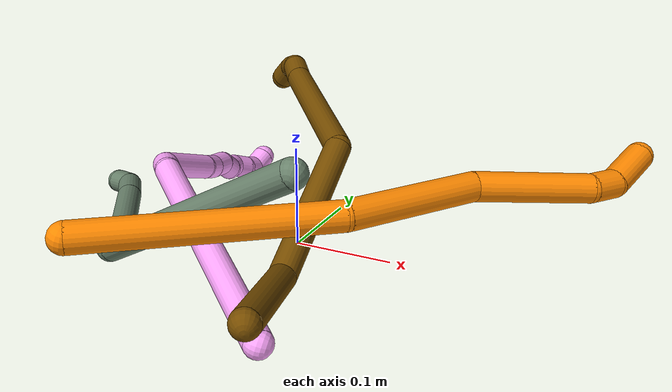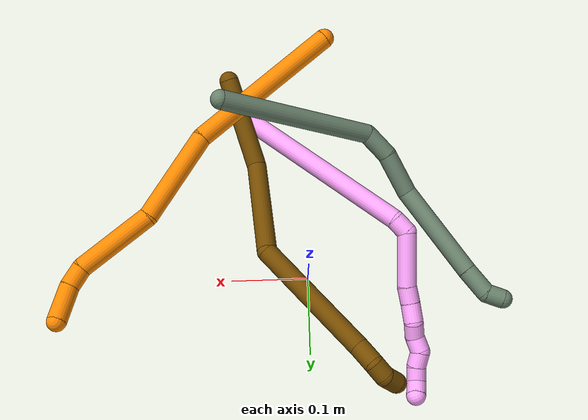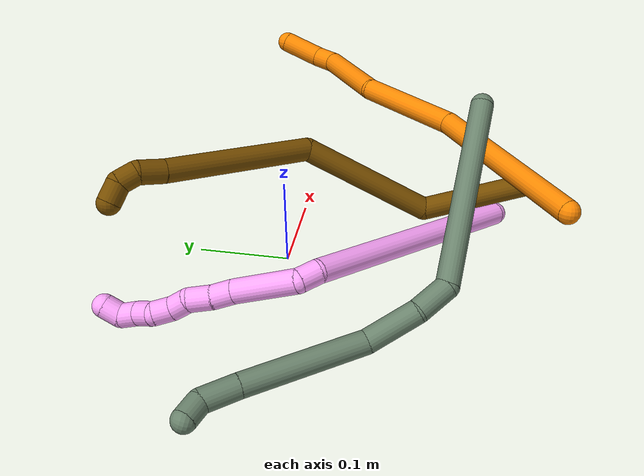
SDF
<sdf version="1.7">
 <world name="default">
  <model name="4">
   <static>0</static>
   <link name="4">
    <collision name="collision-cylinder-e_1_1_4">
     <pose>-0.07148 0.080844 -0.073861 -2.31109 -0.578316 1.18717</pose>
     <geometry><cylinder><radius>0.0125</radius><length>0.261539</length></cylinder></geometry>
     <surface>
      <friction><ode><mu>1.16</mu><mu2>1.16</mu2><slip1>0</slip1><slip2>0</slip2></ode></friction>
      <contact><ode><kp>1e+06</kp><kd>1</kd><max_vel>0</max_vel><min_depth>0.001</min_depth></ode></contact>
     </surface>
    </collision>
    <visual name="visual-cylinder-e_1_1_4">
     <pose>-0.07148 0.080844 -0.073861 -2.31109 -0.578316 1.18717</pose>
     <geometry><cylinder><radius>0.0125</radius><length>0.261539</length></cylinder></geometry>
     <material><ambient>1 0.65098 0.996078 1</ambient></material>
    </visual>
    <collision name="collision-cylinder-e_2_4_5">
     <pose>-0.147331 0.170867 -0.151646 -1.97482 -0.412609 0.614114</pose>
     <geometry><cylinder><radius>0.0125</radius><length>0.021795</length></cylinder></geometry>
     <surface>
      <friction><ode><mu>1.16</mu><mu2>1.16</mu2><slip1>0</slip1><slip2>0</slip2></ode></friction>
      <contact><ode><kp>1e+06</kp><kd>1</kd><max_vel>0</max_vel><min_depth>0.001</min_depth></ode></contact>
     </surface>
    </collision>
    <visual name="visual-cylinder-e_2_4_5">
     <pose>-0.147331 0.170867 -0.151646 -1.97482 -0.412609 0.614114</pose>
     <geometry><cylinder><radius>0.0125</radius><length>0.021795</length></cylinder></geometry>
     <material><ambient>1 0.65098 0.996078 1</ambient></material>
    </visual>
    <collision name="collision-cylinder-e_3_5_6">
     <pose>-0.164438 0.209312 -0.142455 -1.14946 -0.378057 0.246555</pose>
     <geometry><cylinder><radius>0.0125</radius><length>0.069014</length></cylinder></geometry>
     <surface>
      <friction><ode><mu>1.16</mu><mu2>1.16</mu2><slip1>0</slip1><slip2>0</slip2></ode></friction>
      <contact><ode><kp>1e+06</kp><kd>1</kd><max_vel>0</max_vel><min_depth>0.001</min_depth></ode></contact>
     </surface>
    </collision>
    <visual name="visual-cylinder-e_3_5_6">
     <pose>-0.164438 0.209312 -0.142455 -1.14946 -0.378057 0.246555</pose>
     <geometry><cylinder><radius>0.0125</radius><length>0.069014</length></cylinder></geometry>
     <material><ambient>1 0.65098 0.996078 1</ambient></material>
    </visual>
    <collision name="collision-cylinder-e_4_6_7">
     <pose>-0.181338 0.248634 -0.127248 -1.36584 -0.385111 0.314597</pose>
     <geometry><cylinder><radius>0.0125</radius><length>0.022166</length></cylinder></geometry>
     <surface>
      <friction><ode><mu>1.16</mu><mu2>1.16</mu2><slip1>0</slip1><slip2>0</slip2></ode></friction>
      <contact><ode><kp>1e+06</kp><kd>1</kd><max_vel>0</max_vel><min_depth>0.001</min_depth></ode></contact>
     </surface>
    </collision>
    <visual name="visual-cylinder-e_4_6_7">
     <pose>-0.181338 0.248634 -0.127248 -1.36584 -0.385111 0.314597</pose>
     <geometry><cylinder><radius>0.0125</radius><length>0.022166</length></cylinder></geometry>
     <material><ambient>1 0.65098 0.996078 1</ambient></material>
    </visual>
    <collision name="collision-cylinder-e_5_7_8">
     <pose>-0.191837 0.269118 -0.122583 -1.32866 -0.532884 0.421113</pose>
     <geometry><cylinder><radius>0.0125</radius><length>0.02494</length></cylinder></geometry>
     <surface>
      <friction><ode><mu>1.16</mu><mu2>1.16</mu2><slip1>0</slip1><slip2>0</slip2></ode></friction>
      <contact><ode><kp>1e+06</kp><kd>1</kd><max_vel>0</max_vel><min_depth>0.001</min_depth></ode></contact>
     </surface>
    </collision>
    <visual name="visual-cylinder-e_5_7_8">
     <pose>-0.191837 0.269118 -0.122583 -1.32866 -0.532884 0.421113</pose>
     <geometry><cylinder><radius>0.0125</radius><length>0.02494</length></cylinder></geometry>
     <material><ambient>1 0.65098 0.996078 1</ambient></material>
    </visual>
    <collision name="collision-cylinder-e_6_8_9">
     <pose>-0.199217 0.289155 -0.116763 -1.24525 -0.102655 0.073725</pose>
     <geometry><cylinder><radius>0.0125</radius><length>0.020393</length></cylinder></geometry>
     <surface>
      <friction><ode><mu>1.16</mu><mu2>1.16</mu2><slip1>0</slip1><slip2>0</slip2></ode></friction>
      <contact><ode><kp>1e+06</kp><kd>1</kd><max_vel>0</max_vel><min_depth>0.001</min_depth></ode></contact>
     </surface>
    </collision>
    <visual name="visual-cylinder-e_6_8_9">
     <pose>-0.199217 0.289155 -0.116763 -1.24525 -0.102655 0.073725</pose>
     <geometry><cylinder><radius>0.0125</radius><length>0.020393</length></cylinder></geometry>
     <material><ambient>1 0.65098 0.996078 1</ambient></material>
    </visual>
    <collision name="collision-cylinder-e_7_9_10">
     <pose>-0.204852 0.307702 -0.113374 -1.55448 -0.474492 0.467093</pose>
     <geometry><cylinder><radius>0.0125</radius><length>0.020095</length></cylinder></geometry>
     <surface>
      <friction><ode><mu>1.16</mu><mu2>1.16</mu2><slip1>0</slip1><slip2>0</slip2></ode></friction>
      <contact><ode><kp>1e+06</kp><kd>1</kd><max_vel>0</max_vel><min_depth>0.001</min_depth></ode></contact>
     </surface>
    </collision>
    <visual name="visual-cylinder-e_7_9_10">
     <pose>-0.204852 0.307702 -0.113374 -1.55448 -0.474492 0.467093</pose>
     <geometry><cylinder><radius>0.0125</radius><length>0.020095</length></cylinder></geometry>
     <material><ambient>1 0.65098 0.996078 1</ambient></material>
    </visual>
    <collision name="collision-cylinder-e_8_10_11">
     <pose>-0.212766 0.323891 -0.107166 -0.874654 -0.338118 0.159263</pose>
     <geometry><cylinder><radius>0.0125</radius><length>0.020041</length></cylinder></geometry>
     <surface>
      <friction><ode><mu>1.16</mu><mu2>1.16</mu2><slip1>0</slip1><slip2>0</slip2></ode></friction>
      <contact><ode><kp>1e+06</kp><kd>1</kd><max_vel>0</max_vel><min_depth>0.001</min_depth></ode></contact>
     </surface>
    </collision>
    <visual name="visual-cylinder-e_8_10_11">
     <pose>-0.212766 0.323891 -0.107166 -0.874654 -0.338118 0.159263</pose>
     <geometry><cylinder><radius>0.0125</radius><length>0.020041</length></cylinder></geometry>
     <material><ambient>1 0.65098 0.996078 1</ambient></material>
    </visual>
    <collision name="collision-cylinder-e_9_11_12">
     <pose>-0.220162 0.339548 -0.097509 -1.16657 -0.419133 0.278874</pose>
     <geometry><cylinder><radius>0.0125</radius><length>0.020011</length></cylinder></geometry>
     <surface>
      <friction><ode><mu>1.16</mu><mu2>1.16</mu2><slip1>0</slip1><slip2>0</slip2></ode></friction>
      <contact><ode><kp>1e+06</kp><kd>1</kd><max_vel>0</max_vel><min_depth>0.001</min_depth></ode></contact>
     </surface>
    </collision>
    <visual name="visual-cylinder-e_9_11_12">
     <pose>-0.220162 0.339548 -0.097509 -1.16657 -0.419133 0.278874</pose>
     <geometry><cylinder><radius>0.0125</radius><length>0.020011</length></cylinder></geometry>
     <material><ambient>1 0.65098 0.996078 1</ambient></material>
    </visual>
    <collision name="collision-cylinder-e_10_12_2">
     <pose>-0.233346 0.351233 -0.091413 -0.919533 -1.14552 0.618161</pose>
     <geometry><cylinder><radius>0.0125</radius><length>0.020007</length></cylinder></geometry>
     <surface>
      <friction><ode><mu>1.16</mu><mu2>1.16</mu2><slip1>0</slip1><slip2>0</slip2></ode></friction>
      <contact><ode><kp>1e+06</kp><kd>1</kd><max_vel>0</max_vel><min_depth>0.001</min_depth></ode></contact>
     </surface>
    </collision>
    <visual name="visual-cylinder-e_10_12_2">
     <pose>-0.233346 0.351233 -0.091413 -0.919533 -1.14552 0.618161</pose>
     <geometry><cylinder><radius>0.0125</radius><length>0.020007</length></cylinder></geometry>
     <material><ambient>1 0.65098 0.996078 1</ambient></material>
    </visual>
    <collision name="collision-sphere-2">
     <pose>-0.242459 0.354515 -0.088911 0 -0 0</pose>
     <geometry><sphere><radius>0.0125</radius></sphere></geometry>
     <surface>
      <friction><ode><mu>1.16</mu><mu2>1.16</mu2><slip1>0</slip1><slip2>0</slip2></ode></friction>
      <contact><ode><kp>1e+06</kp><kd>1</kd><max_vel>0</max_vel><min_depth>0.001</min_depth></ode></contact>
     </surface>
    </collision>
    <visual name="visual-sphere-2">
     <pose>-0.242459 0.354515 -0.088911 0 -0 0</pose>
     <geometry><sphere><radius>0.0125</radius></sphere></geometry>
     <material><ambient>1 0.65098 0.996078 1</ambient></material>
    </visual>
    <collision name="collision-sphere-12">
     <pose>-0.224234 0.347951 -0.093915 0 -0 0</pose>
     <geometry><sphere><radius>0.0125</radius></sphere></geometry>
     <surface>
      <friction><ode><mu>1.16</mu><mu2>1.16</mu2><slip1>0</slip1><slip2>0</slip2></ode></friction>
      <contact><ode><kp>1e+06</kp><kd>1</kd><max_vel>0</max_vel><min_depth>0.001</min_depth></ode></contact>
     </surface>
    </collision>
    <visual name="visual-sphere-12">
     <pose>-0.224234 0.347951 -0.093915 0 -0 0</pose>
     <geometry><sphere><radius>0.0125</radius></sphere></geometry>
     <material><ambient>1 0.65098 0.996078 1</ambient></material>
    </visual>
    <collision name="collision-sphere-11">
     <pose>-0.21609 0.331145 -0.101104 0 -0 0</pose>
     <geometry><sphere><radius>0.0125</radius></sphere></geometry>
     <surface>
      <friction><ode><mu>1.16</mu><mu2>1.16</mu2><slip1>0</slip1><slip2>0</slip2></ode></friction>
      <contact><ode><kp>1e+06</kp><kd>1</kd><max_vel>0</max_vel><min_depth>0.001</min_depth></ode></contact>
     </surface>
    </collision>
    <visual name="visual-sphere-11">
     <pose>-0.21609 0.331145 -0.101104 0 -0 0</pose>
     <geometry><sphere><radius>0.0125</radius></sphere></geometry>
     <material><ambient>1 0.65098 0.996078 1</ambient></material>
    </visual>
    <collision name="collision-sphere-10">
     <pose>-0.209442 0.316638 -0.113228 0 -0 0</pose>
     <geometry><sphere><radius>0.0125</radius></sphere></geometry>
     <surface>
      <friction><ode><mu>1.16</mu><mu2>1.16</mu2><slip1>0</slip1><slip2>0</slip2></ode></friction>
      <contact><ode><kp>1e+06</kp><kd>1</kd><max_vel>0</max_vel><min_depth>0.001</min_depth></ode></contact>
     </surface>
    </collision>
    <visual name="visual-sphere-10">
     <pose>-0.209442 0.316638 -0.113228 0 -0 0</pose>
     <geometry><sphere><radius>0.0125</radius></sphere></geometry>
     <material><ambient>1 0.65098 0.996078 1</ambient></material>
    </visual>
    <collision name="collision-sphere-9">
     <pose>-0.200261 0.298765 -0.113519 0 -0 0</pose>
     <geometry><sphere><radius>0.0125</radius></sphere></geometry>
     <surface>
      <friction><ode><mu>1.16</mu><mu2>1.16</mu2><slip1>0</slip1><slip2>0</slip2></ode></friction>
      <contact><ode><kp>1e+06</kp><kd>1</kd><max_vel>0</max_vel><min_depth>0.001</min_depth></ode></contact>
     </surface>
    </collision>
    <visual name="visual-sphere-9">
     <pose>-0.200261 0.298765 -0.113519 0 -0 0</pose>
     <geometry><sphere><radius>0.0125</radius></sphere></geometry>
     <material><ambient>1 0.65098 0.996078 1</ambient></material>
    </visual>
    <collision name="collision-sphere-4">
     <pose>-0.142961 0.161688 -0.147722 0 -0 0</pose>
     <geometry><sphere><radius>0.0125</radius></sphere></geometry>
     <surface>
      <friction><ode><mu>1.16</mu><mu2>1.16</mu2><slip1>0</slip1><slip2>0</slip2></ode></friction>
      <contact><ode><kp>1e+06</kp><kd>1</kd><max_vel>0</max_vel><min_depth>0.001</min_depth></ode></contact>
     </surface>
    </collision>
    <visual name="visual-sphere-4">
     <pose>-0.142961 0.161688 -0.147722 0 -0 0</pose>
     <geometry><sphere><radius>0.0125</radius></sphere></geometry>
     <material><ambient>1 0.65098 0.996078 1</ambient></material>
    </visual>
    <collision name="collision-sphere-1">
     <geometry><sphere><radius>0.0125</radius></sphere></geometry>
     <surface>
      <friction><ode><mu>1.16</mu><mu2>1.16</mu2><slip1>0</slip1><slip2>0</slip2></ode></friction>
      <contact><ode><kp>1e+06</kp><kd>1</kd><max_vel>0</max_vel><min_depth>0.001</min_depth></ode></contact>
     </surface>
    </collision>
    <visual name="visual-sphere-1">
     <geometry><sphere><radius>0.0125</radius></sphere></geometry>
     <material><ambient>1 0.65098 0.996078 1</ambient></material>
    </visual>
    <collision name="collision-sphere-8">
     <pose>-0.198172 0.279545 -0.120007 0 -0 0</pose>
     <geometry><sphere><radius>0.0125</radius></sphere></geometry>
     <surface>
      <friction><ode><mu>1.16</mu><mu2>1.16</mu2><slip1>0</slip1><slip2>0</slip2></ode></friction>
      <contact><ode><kp>1e+06</kp><kd>1</kd><max_vel>0</max_vel><min_depth>0.001</min_depth></ode></contact>
     </surface>
    </collision>
    <visual name="visual-sphere-8">
     <pose>-0.198172 0.279545 -0.120007 0 -0 0</pose>
     <geometry><sphere><radius>0.0125</radius></sphere></geometry>
     <material><ambient>1 0.65098 0.996078 1</ambient></material>
    </visual>
    <collision name="collision-sphere-5">
     <pose>-0.151701 0.180047 -0.155571 0 -0 0</pose>
     <geometry><sphere><radius>0.0125</radius></sphere></geometry>
     <surface>
      <friction><ode><mu>1.16</mu><mu2>1.16</mu2><slip1>0</slip1><slip2>0</slip2></ode></friction>
      <contact><ode><kp>1e+06</kp><kd>1</kd><max_vel>0</max_vel><min_depth>0.001</min_depth></ode></contact>
     </surface>
    </collision>
    <visual name="visual-sphere-5">
     <pose>-0.151701 0.180047 -0.155571 0 -0 0</pose>
     <geometry><sphere><radius>0.0125</radius></sphere></geometry>
     <material><ambient>1 0.65098 0.996078 1</ambient></material>
    </visual>
    <collision name="collision-sphere-6">
     <pose>-0.177175 0.238578 -0.129339 0 -0 0</pose>
     <geometry><sphere><radius>0.0125</radius></sphere></geometry>
     <surface>
      <friction><ode><mu>1.16</mu><mu2>1.16</mu2><slip1>0</slip1><slip2>0</slip2></ode></friction>
      <contact><ode><kp>1e+06</kp><kd>1</kd><max_vel>0</max_vel><min_depth>0.001</min_depth></ode></contact>
     </surface>
    </collision>
    <visual name="visual-sphere-6">
     <pose>-0.177175 0.238578 -0.129339 0 -0 0</pose>
     <geometry><sphere><radius>0.0125</radius></sphere></geometry>
     <material><ambient>1 0.65098 0.996078 1</ambient></material>
    </visual>
    <collision name="collision-sphere-7">
     <pose>-0.185502 0.25869 -0.125158 0 -0 0</pose>
     <geometry><sphere><radius>0.0125</radius></sphere></geometry>
     <surface>
      <friction><ode><mu>1.16</mu><mu2>1.16</mu2><slip1>0</slip1><slip2>0</slip2></ode></friction>
      <contact><ode><kp>1e+06</kp><kd>1</kd><max_vel>0</max_vel><min_depth>0.001</min_depth></ode></contact>
     </surface>
    </collision>
    <visual name="visual-sphere-7">
     <pose>-0.185502 0.25869 -0.125158 0 -0 0</pose>
     <geometry><sphere><radius>0.0125</radius></sphere></geometry>
     <material><ambient>1 0.65098 0.996078 1</ambient></material>
    </visual>
    <inertial>
     <pose>-0.127151 0.167858 -0.097838 0 -0 0</pose>
     <mass>0.5</mass>
     <inertia>
      <ixx>0.001665</ixx>
      <ixy>0</ixy>
      <ixz>0</ixz>
      <iyy>0.001406</iyy>
      <iyz>0</iyz>
      <izz>-0.000134</izz>
     </inertia>
    </inertial>
   </link>
   <pose>0.085295 -0.22274 0.02933 -2.00453 0.844785 -1.60511</pose>
  </model>
  <model name="12">
   <static>0</static>
   <link name="12">
    <collision name="collision-cylinder-e_1_1_4">
     <pose>-0.022585 0.005407 0.054533 -0.098825 -0.390919 0.019581</pose>
     <geometry><cylinder><radius>0.0125</radius><length>0.118544</length></cylinder></geometry>
     <surface>
      <friction><ode><mu>1.16</mu><mu2>1.16</mu2><slip1>0</slip1><slip2>0</slip2></ode></friction>
      <contact><ode><kp>1e+06</kp><kd>1</kd><max_vel>0</max_vel><min_depth>0.001</min_depth></ode></contact>
     </surface>
    </collision>
    <visual name="visual-cylinder-e_1_1_4">
     <pose>-0.022585 0.005407 0.054533 -0.098825 -0.390919 0.019581</pose>
     <geometry><cylinder><radius>0.0125</radius><length>0.118544</length></cylinder></geometry>
     <material><ambient>0.466667 0.301961 0 1</ambient></material>
    </visual>
    <collision name="collision-cylinder-e_2_4_5">
     <pose>-0.026443 0.041157 0.174112 -0.436481 0.25521 -0.056893</pose>
     <geometry><cylinder><radius>0.0125</radius><length>0.148356</length></cylinder></geometry>
     <surface>
      <friction><ode><mu>1.16</mu><mu2>1.16</mu2><slip1>0</slip1><slip2>0</slip2></ode></friction>
      <contact><ode><kp>1e+06</kp><kd>1</kd><max_vel>0</max_vel><min_depth>0.001</min_depth></ode></contact>
     </surface>
    </collision>
    <visual name="visual-cylinder-e_2_4_5">
     <pose>-0.026443 0.041157 0.174112 -0.436481 0.25521 -0.056893</pose>
     <geometry><cylinder><radius>0.0125</radius><length>0.148356</length></cylinder></geometry>
     <material><ambient>0.466667 0.301961 0 1</ambient></material>
    </visual>
    <collision name="collision-cylinder-e_3_5_6">
     <pose>-0.003389 0.053467 0.318827 0.2226 0.052937 0.005918</pose>
     <geometry><cylinder><radius>0.0125</radius><length>0.163599</length></cylinder></geometry>
     <surface>
      <friction><ode><mu>1.16</mu><mu2>1.16</mu2><slip1>0</slip1><slip2>0</slip2></ode></friction>
      <contact><ode><kp>1e+06</kp><kd>1</kd><max_vel>0</max_vel><min_depth>0.001</min_depth></ode></contact>
     </surface>
    </collision>
    <visual name="visual-cylinder-e_3_5_6">
     <pose>-0.003389 0.053467 0.318827 0.2226 0.052937 0.005918</pose>
     <geometry><cylinder><radius>0.0125</radius><length>0.163599</length></cylinder></geometry>
     <material><ambient>0.466667 0.301961 0 1</ambient></material>
    </visual>
    <collision name="collision-cylinder-e_4_6_7">
     <pose>0.002601 0.03342 0.412101 0.146921 0.120279 0.008862</pose>
     <geometry><cylinder><radius>0.0125</radius><length>0.027704</length></cylinder></geometry>
     <surface>
      <friction><ode><mu>1.16</mu><mu2>1.16</mu2><slip1>0</slip1><slip2>0</slip2></ode></friction>
      <contact><ode><kp>1e+06</kp><kd>1</kd><max_vel>0</max_vel><min_depth>0.001</min_depth></ode></contact>
     </surface>
    </collision>
    <visual name="visual-cylinder-e_4_6_7">
     <pose>0.002601 0.03342 0.412101 0.146921 0.120279 0.008862</pose>
     <geometry><cylinder><radius>0.0125</radius><length>0.027704</length></cylinder></geometry>
     <material><ambient>0.466667 0.301961 0 1</ambient></material>
    </visual>
    <collision name="collision-cylinder-e_5_7_8">
     <pose>0.000627 0.028252 0.434629 0.339793 -0.366755 -0.06361</pose>
     <geometry><cylinder><radius>0.0125</radius><length>0.02028</length></cylinder></geometry>
     <surface>
      <friction><ode><mu>1.16</mu><mu2>1.16</mu2><slip1>0</slip1><slip2>0</slip2></ode></friction>
      <contact><ode><kp>1e+06</kp><kd>1</kd><max_vel>0</max_vel><min_depth>0.001</min_depth></ode></contact>
     </surface>
    </collision>
    <visual name="visual-cylinder-e_5_7_8">
     <pose>0.000627 0.028252 0.434629 0.339793 -0.366755 -0.06361</pose>
     <geometry><cylinder><radius>0.0125</radius><length>0.02028</length></cylinder></geometry>
     <material><ambient>0.466667 0.301961 0 1</ambient></material>
    </visual>
    <collision name="collision-cylinder-e_6_8_2">
     <pose>-0.009751 0.018275 0.448427 0.95053 -0.677238 -0.358581</pose>
     <geometry><cylinder><radius>0.0125</radius><length>0.021517</length></cylinder></geometry>
     <surface>
      <friction><ode><mu>1.16</mu><mu2>1.16</mu2><slip1>0</slip1><slip2>0</slip2></ode></friction>
      <contact><ode><kp>1e+06</kp><kd>1</kd><max_vel>0</max_vel><min_depth>0.001</min_depth></ode></contact>
     </surface>
    </collision>
    <visual name="visual-cylinder-e_6_8_2">
     <pose>-0.009751 0.018275 0.448427 0.95053 -0.677238 -0.358581</pose>
     <geometry><cylinder><radius>0.0125</radius><length>0.021517</length></cylinder></geometry>
     <material><ambient>0.466667 0.301961 0 1</ambient></material>
    </visual>
    <collision name="collision-sphere-2">
     <pose>-0.016492 0.011453 0.4533 0 -0 0</pose>
     <geometry><sphere><radius>0.0125</radius></sphere></geometry>
     <surface>
      <friction><ode><mu>1.16</mu><mu2>1.16</mu2><slip1>0</slip1><slip2>0</slip2></ode></friction>
      <contact><ode><kp>1e+06</kp><kd>1</kd><max_vel>0</max_vel><min_depth>0.001</min_depth></ode></contact>
     </surface>
    </collision>
    <visual name="visual-sphere-2">
     <pose>-0.016492 0.011453 0.4533 0 -0 0</pose>
     <geometry><sphere><radius>0.0125</radius></sphere></geometry>
     <material><ambient>0.466667 0.301961 0 1</ambient></material>
    </visual>
    <collision name="collision-sphere-4">
     <pose>-0.04517 0.010814 0.109066 0 -0 0</pose>
     <geometry><sphere><radius>0.0125</radius></sphere></geometry>
     <surface>
      <friction><ode><mu>1.16</mu><mu2>1.16</mu2><slip1>0</slip1><slip2>0</slip2></ode></friction>
      <contact><ode><kp>1e+06</kp><kd>1</kd><max_vel>0</max_vel><min_depth>0.001</min_depth></ode></contact>
     </surface>
    </collision>
    <visual name="visual-sphere-4">
     <pose>-0.04517 0.010814 0.109066 0 -0 0</pose>
     <geometry><sphere><radius>0.0125</radius></sphere></geometry>
     <material><ambient>0.466667 0.301961 0 1</ambient></material>
    </visual>
    <collision name="collision-sphere-1">
     <geometry><sphere><radius>0.0125</radius></sphere></geometry>
     <surface>
      <friction><ode><mu>1.16</mu><mu2>1.16</mu2><slip1>0</slip1><slip2>0</slip2></ode></friction>
      <contact><ode><kp>1e+06</kp><kd>1</kd><max_vel>0</max_vel><min_depth>0.001</min_depth></ode></contact>
     </surface>
    </collision>
    <visual name="visual-sphere-1">
     <geometry><sphere><radius>0.0125</radius></sphere></geometry>
     <material><ambient>0.466667 0.301961 0 1</ambient></material>
    </visual>
    <collision name="collision-sphere-8">
     <pose>-0.003009 0.025098 0.443554 0 -0 0</pose>
     <geometry><sphere><radius>0.0125</radius></sphere></geometry>
     <surface>
      <friction><ode><mu>1.16</mu><mu2>1.16</mu2><slip1>0</slip1><slip2>0</slip2></ode></friction>
      <contact><ode><kp>1e+06</kp><kd>1</kd><max_vel>0</max_vel><min_depth>0.001</min_depth></ode></contact>
     </surface>
    </collision>
    <visual name="visual-sphere-8">
     <pose>-0.003009 0.025098 0.443554 0 -0 0</pose>
     <geometry><sphere><radius>0.0125</radius></sphere></geometry>
     <material><ambient>0.466667 0.301961 0 1</ambient></material>
    </visual>
    <collision name="collision-sphere-5">
     <pose>-0.007717 0.0715 0.239158 0 -0 0</pose>
     <geometry><sphere><radius>0.0125</radius></sphere></geometry>
     <surface>
      <friction><ode><mu>1.16</mu><mu2>1.16</mu2><slip1>0</slip1><slip2>0</slip2></ode></friction>
      <contact><ode><kp>1e+06</kp><kd>1</kd><max_vel>0</max_vel><min_depth>0.001</min_depth></ode></contact>
     </surface>
    </collision>
    <visual name="visual-sphere-5">
     <pose>-0.007717 0.0715 0.239158 0 -0 0</pose>
     <geometry><sphere><radius>0.0125</radius></sphere></geometry>
     <material><ambient>0.466667 0.301961 0 1</ambient></material>
    </visual>
    <collision name="collision-sphere-6">
     <pose>0.000939 0.035434 0.398497 0 -0 0</pose>
     <geometry><sphere><radius>0.0125</radius></sphere></geometry>
     <surface>
      <friction><ode><mu>1.16</mu><mu2>1.16</mu2><slip1>0</slip1><slip2>0</slip2></ode></friction>
      <contact><ode><kp>1e+06</kp><kd>1</kd><max_vel>0</max_vel><min_depth>0.001</min_depth></ode></contact>
     </surface>
    </collision>
    <visual name="visual-sphere-6">
     <pose>0.000939 0.035434 0.398497 0 -0 0</pose>
     <geometry><sphere><radius>0.0125</radius></sphere></geometry>
     <material><ambient>0.466667 0.301961 0 1</ambient></material>
    </visual>
    <collision name="collision-sphere-7">
     <pose>0.004263 0.031407 0.425705 0 -0 0</pose>
     <geometry><sphere><radius>0.0125</radius></sphere></geometry>
     <surface>
      <friction><ode><mu>1.16</mu><mu2>1.16</mu2><slip1>0</slip1><slip2>0</slip2></ode></friction>
      <contact><ode><kp>1e+06</kp><kd>1</kd><max_vel>0</max_vel><min_depth>0.001</min_depth></ode></contact>
     </surface>
    </collision>
    <visual name="visual-sphere-7">
     <pose>0.004263 0.031407 0.425705 0 -0 0</pose>
     <geometry><sphere><radius>0.0125</radius></sphere></geometry>
     <material><ambient>0.466667 0.301961 0 1</ambient></material>
    </visual>
    <inertial>
     <pose>-0.01456 0.034772 0.22867 0 -0 0</pose>
     <mass>0.5</mass>
     <inertia>
      <ixx>0.000765</ixx>
      <ixy>0</ixy>
      <ixz>0</ixz>
      <iyy>0.000753</iyy>
      <iyz>0</iyz>
      <izz>-4.1e-05</izz>
     </inertia>
    </inertial>
   </link>
   <pose>0.095286 -0.255199 0.065681 0.987994 -1.27503 -2.10298</pose>
  </model>
  <model name="17">
   <static>0</static>
   <link name="17">
    <collision name="collision-cylinder-e_1_1_4">
     <pose>-0.101212 -0.033229 0.004262 1.44324 -1.25115 -1.13242</pose>
     <geometry><cylinder><radius>0.0125</radius><length>0.213225</length></cylinder></geometry>
     <surface>
      <friction><ode><mu>1.16</mu><mu2>1.16</mu2><slip1>0</slip1><slip2>0</slip2></ode></friction>
      <contact><ode><kp>1e+06</kp><kd>1</kd><max_vel>0</max_vel><min_depth>0.001</min_depth></ode></contact>
     </surface>
    </collision>
    <visual name="visual-cylinder-e_1_1_4">
     <pose>-0.101212 -0.033229 0.004262 1.44324 -1.25115 -1.13242</pose>
     <geometry><cylinder><radius>0.0125</radius><length>0.213225</length></cylinder></geometry>
     <material><ambient>0.415686 0.509804 0.423529 1</ambient></material>
    </visual>
    <collision name="collision-cylinder-e_2_4_5">
     <pose>-0.217754 -0.067556 0.020009 0.095235 -0.925582 -0.047543</pose>
     <geometry><cylinder><radius>0.0125</radius><length>0.038372</length></cylinder></geometry>
     <surface>
      <friction><ode><mu>1.16</mu><mu2>1.16</mu2><slip1>0</slip1><slip2>0</slip2></ode></friction>
      <contact><ode><kp>1e+06</kp><kd>1</kd><max_vel>0</max_vel><min_depth>0.001</min_depth></ode></contact>
     </surface>
    </collision>
    <visual name="visual-cylinder-e_2_4_5">
     <pose>-0.217754 -0.067556 0.020009 0.095235 -0.925582 -0.047543</pose>
     <geometry><cylinder><radius>0.0125</radius><length>0.038372</length></cylinder></geometry>
     <material><ambient>0.415686 0.509804 0.423529 1</ambient></material>
    </visual>
    <collision name="collision-cylinder-e_3_5_6">
     <pose>-0.253748 -0.063326 0.050839 -0.268708 -0.800161 0.114198</pose>
     <geometry><cylinder><radius>0.0125</radius><length>0.057606</length></cylinder></geometry>
     <surface>
      <friction><ode><mu>1.16</mu><mu2>1.16</mu2><slip1>0</slip1><slip2>0</slip2></ode></friction>
      <contact><ode><kp>1e+06</kp><kd>1</kd><max_vel>0</max_vel><min_depth>0.001</min_depth></ode></contact>
     </surface>
    </collision>
    <visual name="visual-cylinder-e_3_5_6">
     <pose>-0.253748 -0.063326 0.050839 -0.268708 -0.800161 0.114198</pose>
     <geometry><cylinder><radius>0.0125</radius><length>0.057606</length></cylinder></geometry>
     <material><ambient>0.415686 0.509804 0.423529 1</ambient></material>
    </visual>
    <collision name="collision-cylinder-e_4_6_7">
     <pose>-0.30858 -0.065564 0.124764 0.137723 -0.555029 -0.03929</pose>
     <geometry><cylinder><radius>0.0125</radius><length>0.129672</length></cylinder></geometry>
     <surface>
      <friction><ode><mu>1.16</mu><mu2>1.16</mu2><slip1>0</slip1><slip2>0</slip2></ode></friction>
      <contact><ode><kp>1e+06</kp><kd>1</kd><max_vel>0</max_vel><min_depth>0.001</min_depth></ode></contact>
     </surface>
    </collision>
    <visual name="visual-cylinder-e_4_6_7">
     <pose>-0.30858 -0.065564 0.124764 0.137723 -0.555029 -0.03929</pose>
     <geometry><cylinder><radius>0.0125</radius><length>0.129672</length></cylinder></geometry>
     <material><ambient>0.415686 0.509804 0.423529 1</ambient></material>
    </visual>
    <collision name="collision-cylinder-e_5_7_8">
     <pose>-0.353359 -0.07611 0.194983 0.188349 -0.588 -0.057181</pose>
     <geometry><cylinder><radius>0.0125</radius><length>0.038263</length></cylinder></geometry>
     <surface>
      <friction><ode><mu>1.16</mu><mu2>1.16</mu2><slip1>0</slip1><slip2>0</slip2></ode></friction>
      <contact><ode><kp>1e+06</kp><kd>1</kd><max_vel>0</max_vel><min_depth>0.001</min_depth></ode></contact>
     </surface>
    </collision>
    <visual name="visual-cylinder-e_5_7_8">
     <pose>-0.353359 -0.07611 0.194983 0.188349 -0.588 -0.057181</pose>
     <geometry><cylinder><radius>0.0125</radius><length>0.038263</length></cylinder></geometry>
     <material><ambient>0.415686 0.509804 0.423529 1</ambient></material>
    </visual>
    <collision name="collision-cylinder-e_6_8_2">
     <pose>-0.372582 -0.084893 0.215397 0.88198 -0.853156 -0.422621</pose>
     <geometry><cylinder><radius>0.0125</radius><length>0.022861</length></cylinder></geometry>
     <surface>
      <friction><ode><mu>1.16</mu><mu2>1.16</mu2><slip1>0</slip1><slip2>0</slip2></ode></friction>
      <contact><ode><kp>1e+06</kp><kd>1</kd><max_vel>0</max_vel><min_depth>0.001</min_depth></ode></contact>
     </surface>
    </collision>
    <visual name="visual-cylinder-e_6_8_2">
     <pose>-0.372582 -0.084893 0.215397 0.88198 -0.853156 -0.422621</pose>
     <geometry><cylinder><radius>0.0125</radius><length>0.022861</length></cylinder></geometry>
     <material><ambient>0.415686 0.509804 0.423529 1</ambient></material>
    </visual>
    <collision name="collision-sphere-2">
     <pose>-0.381193 -0.090696 0.220175 0 -0 0</pose>
     <geometry><sphere><radius>0.0125</radius></sphere></geometry>
     <surface>
      <friction><ode><mu>1.16</mu><mu2>1.16</mu2><slip1>0</slip1><slip2>0</slip2></ode></friction>
      <contact><ode><kp>1e+06</kp><kd>1</kd><max_vel>0</max_vel><min_depth>0.001</min_depth></ode></contact>
     </surface>
    </collision>
    <visual name="visual-sphere-2">
     <pose>-0.381193 -0.090696 0.220175 0 -0 0</pose>
     <geometry><sphere><radius>0.0125</radius></sphere></geometry>
     <material><ambient>0.415686 0.509804 0.423529 1</ambient></material>
    </visual>
    <collision name="collision-sphere-4">
     <pose>-0.202425 -0.066458 0.008523 0 -0 0</pose>
     <geometry><sphere><radius>0.0125</radius></sphere></geometry>
     <surface>
      <friction><ode><mu>1.16</mu><mu2>1.16</mu2><slip1>0</slip1><slip2>0</slip2></ode></friction>
      <contact><ode><kp>1e+06</kp><kd>1</kd><max_vel>0</max_vel><min_depth>0.001</min_depth></ode></contact>
     </surface>
    </collision>
    <visual name="visual-sphere-4">
     <pose>-0.202425 -0.066458 0.008523 0 -0 0</pose>
     <geometry><sphere><radius>0.0125</radius></sphere></geometry>
     <material><ambient>0.415686 0.509804 0.423529 1</ambient></material>
    </visual>
    <collision name="collision-sphere-1">
     <geometry><sphere><radius>0.0125</radius></sphere></geometry>
     <surface>
      <friction><ode><mu>1.16</mu><mu2>1.16</mu2><slip1>0</slip1><slip2>0</slip2></ode></friction>
      <contact><ode><kp>1e+06</kp><kd>1</kd><max_vel>0</max_vel><min_depth>0.001</min_depth></ode></contact>
     </surface>
    </collision>
    <visual name="visual-sphere-1">
     <geometry><sphere><radius>0.0125</radius></sphere></geometry>
     <material><ambient>0.415686 0.509804 0.423529 1</ambient></material>
    </visual>
    <collision name="collision-sphere-8">
     <pose>-0.363971 -0.079091 0.210619 0 -0 0</pose>
     <geometry><sphere><radius>0.0125</radius></sphere></geometry>
     <surface>
      <friction><ode><mu>1.16</mu><mu2>1.16</mu2><slip1>0</slip1><slip2>0</slip2></ode></friction>
      <contact><ode><kp>1e+06</kp><kd>1</kd><max_vel>0</max_vel><min_depth>0.001</min_depth></ode></contact>
     </surface>
    </collision>
    <visual name="visual-sphere-8">
     <pose>-0.363971 -0.079091 0.210619 0 -0 0</pose>
     <geometry><sphere><radius>0.0125</radius></sphere></geometry>
     <material><ambient>0.415686 0.509804 0.423529 1</ambient></material>
    </visual>
    <collision name="collision-sphere-5">
     <pose>-0.233083 -0.068653 0.031495 0 -0 0</pose>
     <geometry><sphere><radius>0.0125</radius></sphere></geometry>
     <surface>
      <friction><ode><mu>1.16</mu><mu2>1.16</mu2><slip1>0</slip1><slip2>0</slip2></ode></friction>
      <contact><ode><kp>1e+06</kp><kd>1</kd><max_vel>0</max_vel><min_depth>0.001</min_depth></ode></contact>
     </surface>
    </collision>
    <visual name="visual-sphere-5">
     <pose>-0.233083 -0.068653 0.031495 0 -0 0</pose>
     <geometry><sphere><radius>0.0125</radius></sphere></geometry>
     <material><ambient>0.415686 0.509804 0.423529 1</ambient></material>
    </visual>
    <collision name="collision-sphere-6">
     <pose>-0.274414 -0.057999 0.070183 0 -0 0</pose>
     <geometry><sphere><radius>0.0125</radius></sphere></geometry>
     <surface>
      <friction><ode><mu>1.16</mu><mu2>1.16</mu2><slip1>0</slip1><slip2>0</slip2></ode></friction>
      <contact><ode><kp>1e+06</kp><kd>1</kd><max_vel>0</max_vel><min_depth>0.001</min_depth></ode></contact>
     </surface>
    </collision>
    <visual name="visual-sphere-6">
     <pose>-0.274414 -0.057999 0.070183 0 -0 0</pose>
     <geometry><sphere><radius>0.0125</radius></sphere></geometry>
     <material><ambient>0.415686 0.509804 0.423529 1</ambient></material>
    </visual>
    <collision name="collision-sphere-7">
     <pose>-0.342747 -0.073129 0.179346 0 -0 0</pose>
     <geometry><sphere><radius>0.0125</radius></sphere></geometry>
     <surface>
      <friction><ode><mu>1.16</mu><mu2>1.16</mu2><slip1>0</slip1><slip2>0</slip2></ode></friction>
      <contact><ode><kp>1e+06</kp><kd>1</kd><max_vel>0</max_vel><min_depth>0.001</min_depth></ode></contact>
     </surface>
    </collision>
    <visual name="visual-sphere-7">
     <pose>-0.342747 -0.073129 0.179346 0 -0 0</pose>
     <geometry><sphere><radius>0.0125</radius></sphere></geometry>
     <material><ambient>0.415686 0.509804 0.423529 1</ambient></material>
    </visual>
    <inertial>
     <pose>-0.213213 -0.053361 0.066337 0 -0 0</pose>
     <mass>0.5</mass>
     <inertia>
      <ixx>2.2e-05</ixx>
      <ixy>0</ixy>
      <ixz>0</ixz>
      <iyy>0.000712</iyy>
      <iyz>0</iyz>
      <izz>0.001188</izz>
     </inertia>
    </inertial>
   </link>
   <pose>0.102669 -0.197313 0.158004 -1.06476 -0.804653 -0.225159</pose>
  </model>
  <model name="19">
   <static>0</static>
   <link name="19">
    <collision name="collision-cylinder-e_1_1_4">
     <pose>0.084353 0.053698 0.015039 -1.29773 0.98667 -0.774401</pose>
     <geometry><cylinder><radius>0.0125</radius><length>0.202238</length></cylinder></geometry>
     <surface>
      <friction><ode><mu>1.16</mu><mu2>1.16</mu2><slip1>0</slip1><slip2>0</slip2></ode></friction>
      <contact><ode><kp>1e+06</kp><kd>1</kd><max_vel>0</max_vel><min_depth>0.001</min_depth></ode></contact>
     </surface>
    </collision>
    <visual name="visual-cylinder-e_1_1_4">
     <pose>0.084353 0.053698 0.015039 -1.29773 0.98667 -0.774401</pose>
     <geometry><cylinder><radius>0.0125</radius><length>0.202238</length></cylinder></geometry>
     <material><ambient>0.996078 0.537255 0 1</ambient></material>
    </visual>
    <collision name="collision-cylinder-e_2_4_5">
     <pose>0.207388 0.152886 0.035347 -1.45546 0.7014 -0.630068</pose>
     <geometry><cylinder><radius>0.0125</radius><length>0.11989</length></cylinder></geometry>
     <surface>
      <friction><ode><mu>1.16</mu><mu2>1.16</mu2><slip1>0</slip1><slip2>0</slip2></ode></friction>
      <contact><ode><kp>1e+06</kp><kd>1</kd><max_vel>0</max_vel><min_depth>0.001</min_depth></ode></contact>
     </surface>
    </collision>
    <visual name="visual-cylinder-e_2_4_5">
     <pose>0.207388 0.152886 0.035347 -1.45546 0.7014 -0.630068</pose>
     <geometry><cylinder><radius>0.0125</radius><length>0.11989</length></cylinder></geometry>
     <material><ambient>0.996078 0.537255 0 1</ambient></material>
    </visual>
    <collision name="collision-cylinder-e_3_5_6">
     <pose>0.290774 0.223141 0.04511 -1.39134 1.05803 -0.90814</pose>
     <geometry><cylinder><radius>0.0125</radius><length>0.102605</length></cylinder></geometry>
     <surface>
      <friction><ode><mu>1.16</mu><mu2>1.16</mu2><slip1>0</slip1><slip2>0</slip2></ode></friction>
      <contact><ode><kp>1e+06</kp><kd>1</kd><max_vel>0</max_vel><min_depth>0.001</min_depth></ode></contact>
     </surface>
    </collision>
    <visual name="visual-cylinder-e_3_5_6">
     <pose>0.290774 0.223141 0.04511 -1.39134 1.05803 -0.90814</pose>
     <geometry><cylinder><radius>0.0125</radius><length>0.102605</length></cylinder></geometry>
     <material><ambient>0.996078 0.537255 0 1</ambient></material>
    </visual>
    <collision name="collision-cylinder-e_4_6_7">
     <pose>0.344364 0.258351 0.050348 -1.49954 0.703653 -0.658761</pose>
     <geometry><cylinder><radius>0.0125</radius><length>0.027469</length></cylinder></geometry>
     <surface>
      <friction><ode><mu>1.16</mu><mu2>1.16</mu2><slip1>0</slip1><slip2>0</slip2></ode></friction>
      <contact><ode><kp>1e+06</kp><kd>1</kd><max_vel>0</max_vel><min_depth>0.001</min_depth></ode></contact>
     </surface>
    </collision>
    <visual name="visual-cylinder-e_4_6_7">
     <pose>0.344364 0.258351 0.050348 -1.49954 0.703653 -0.658761</pose>
     <geometry><cylinder><radius>0.0125</radius><length>0.027469</length></cylinder></geometry>
     <material><ambient>0.996078 0.537255 0 1</ambient></material>
    </visual>
    <collision name="collision-cylinder-e_5_7_2">
     <pose>0.360743 0.290679 0.057113 -1.30236 0.318854 -0.243852</pose>
     <geometry><cylinder><radius>0.0125</radius><length>0.047798</length></cylinder></geometry>
     <surface>
      <friction><ode><mu>1.16</mu><mu2>1.16</mu2><slip1>0</slip1><slip2>0</slip2></ode></friction>
      <contact><ode><kp>1e+06</kp><kd>1</kd><max_vel>0</max_vel><min_depth>0.001</min_depth></ode></contact>
     </surface>
    </collision>
    <visual name="visual-cylinder-e_5_7_2">
     <pose>0.360743 0.290679 0.057113 -1.30236 0.318854 -0.243852</pose>
     <geometry><cylinder><radius>0.0125</radius><length>0.047798</length></cylinder></geometry>
     <material><ambient>0.996078 0.537255 0 1</ambient></material>
    </visual>
    <collision name="collision-sphere-2">
     <pose>0.368234 0.31256 0.063132 0 -0 0</pose>
     <geometry><sphere><radius>0.0125</radius></sphere></geometry>
     <surface>
      <friction><ode><mu>1.16</mu><mu2>1.16</mu2><slip1>0</slip1><slip2>0</slip2></ode></friction>
      <contact><ode><kp>1e+06</kp><kd>1</kd><max_vel>0</max_vel><min_depth>0.001</min_depth></ode></contact>
     </surface>
    </collision>
    <visual name="visual-sphere-2">
     <pose>0.368234 0.31256 0.063132 0 -0 0</pose>
     <geometry><sphere><radius>0.0125</radius></sphere></geometry>
     <material><ambient>0.996078 0.537255 0 1</ambient></material>
    </visual>
    <collision name="collision-sphere-7">
     <pose>0.353251 0.268797 0.051093 0 -0 0</pose>
     <geometry><sphere><radius>0.0125</radius></sphere></geometry>
     <surface>
      <friction><ode><mu>1.16</mu><mu2>1.16</mu2><slip1>0</slip1><slip2>0</slip2></ode></friction>
      <contact><ode><kp>1e+06</kp><kd>1</kd><max_vel>0</max_vel><min_depth>0.001</min_depth></ode></contact>
     </surface>
    </collision>
    <visual name="visual-sphere-7">
     <pose>0.353251 0.268797 0.051093 0 -0 0</pose>
     <geometry><sphere><radius>0.0125</radius></sphere></geometry>
     <material><ambient>0.996078 0.537255 0 1</ambient></material>
    </visual>
    <collision name="collision-sphere-6">
     <pose>0.335478 0.247905 0.049602 0 -0 0</pose>
     <geometry><sphere><radius>0.0125</radius></sphere></geometry>
     <surface>
      <friction><ode><mu>1.16</mu><mu2>1.16</mu2><slip1>0</slip1><slip2>0</slip2></ode></friction>
      <contact><ode><kp>1e+06</kp><kd>1</kd><max_vel>0</max_vel><min_depth>0.001</min_depth></ode></contact>
     </surface>
    </collision>
    <visual name="visual-sphere-6">
     <pose>0.335478 0.247905 0.049602 0 -0 0</pose>
     <geometry><sphere><radius>0.0125</radius></sphere></geometry>
     <material><ambient>0.996078 0.537255 0 1</ambient></material>
    </visual>
    <collision name="collision-sphere-5">
     <pose>0.24607 0.198377 0.040618 0 -0 0</pose>
     <geometry><sphere><radius>0.0125</radius></sphere></geometry>
     <surface>
      <friction><ode><mu>1.16</mu><mu2>1.16</mu2><slip1>0</slip1><slip2>0</slip2></ode></friction>
      <contact><ode><kp>1e+06</kp><kd>1</kd><max_vel>0</max_vel><min_depth>0.001</min_depth></ode></contact>
     </surface>
    </collision>
    <visual name="visual-sphere-5">
     <pose>0.24607 0.198377 0.040618 0 -0 0</pose>
     <geometry><sphere><radius>0.0125</radius></sphere></geometry>
     <material><ambient>0.996078 0.537255 0 1</ambient></material>
    </visual>
    <collision name="collision-sphere-1">
     <geometry><sphere><radius>0.0125</radius></sphere></geometry>
     <surface>
      <friction><ode><mu>1.16</mu><mu2>1.16</mu2><slip1>0</slip1><slip2>0</slip2></ode></friction>
      <contact><ode><kp>1e+06</kp><kd>1</kd><max_vel>0</max_vel><min_depth>0.001</min_depth></ode></contact>
     </surface>
    </collision>
    <visual name="visual-sphere-1">
     <geometry><sphere><radius>0.0125</radius></sphere></geometry>
     <material><ambient>0.996078 0.537255 0 1</ambient></material>
    </visual>
    <collision name="collision-sphere-4">
     <pose>0.168706 0.107396 0.030077 0 -0 0</pose>
     <geometry><sphere><radius>0.0125</radius></sphere></geometry>
     <surface>
      <friction><ode><mu>1.16</mu><mu2>1.16</mu2><slip1>0</slip1><slip2>0</slip2></ode></friction>
      <contact><ode><kp>1e+06</kp><kd>1</kd><max_vel>0</max_vel><min_depth>0.001</min_depth></ode></contact>
     </surface>
    </collision>
    <visual name="visual-sphere-4">
     <pose>0.168706 0.107396 0.030077 0 -0 0</pose>
     <geometry><sphere><radius>0.0125</radius></sphere></geometry>
     <material><ambient>0.996078 0.537255 0 1</ambient></material>
    </visual>
    <inertial>
     <pose>0.19692 0.14615 0.032041 0 -0 0</pose>
     <mass>0.5</mass>
     <inertia><ixx>6e-05</ixx><ixy>0</ixy><ixz>0</ixz><iyy>0.000323</iyy><iyz>0</iyz><izz>-0.0013</izz></inertia>
    </inertial>
   </link>
   <pose>-0.029219 -0.288446 0.11985 0.104642 0.255191 0.135825</pose>
  </model>
 </world>
</sdf>
